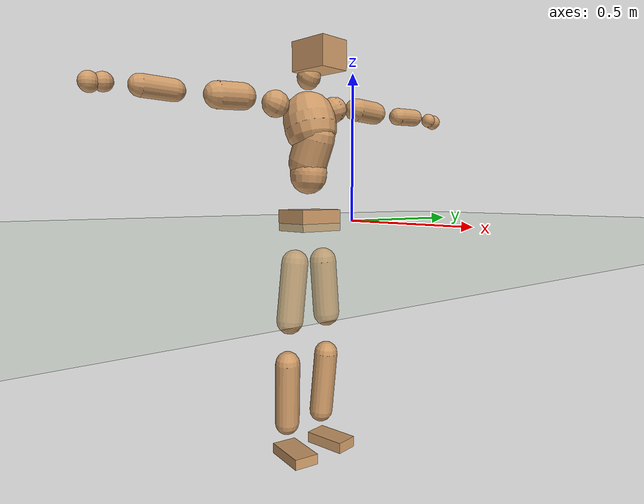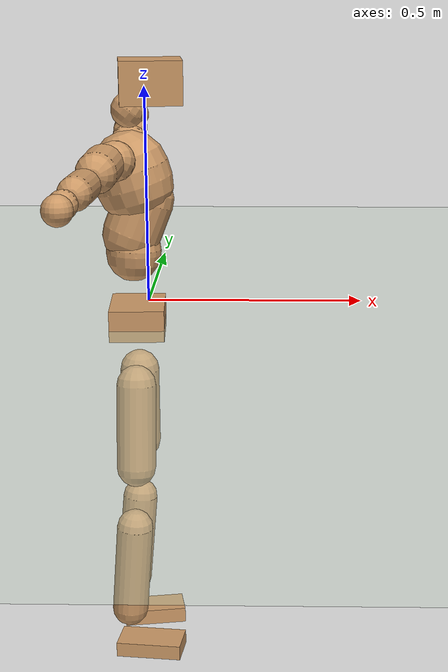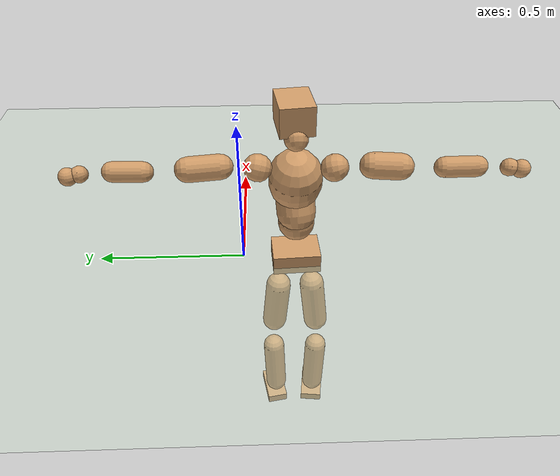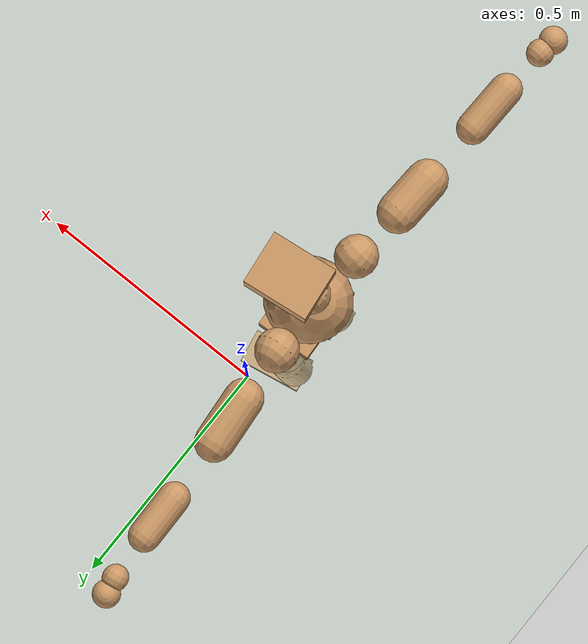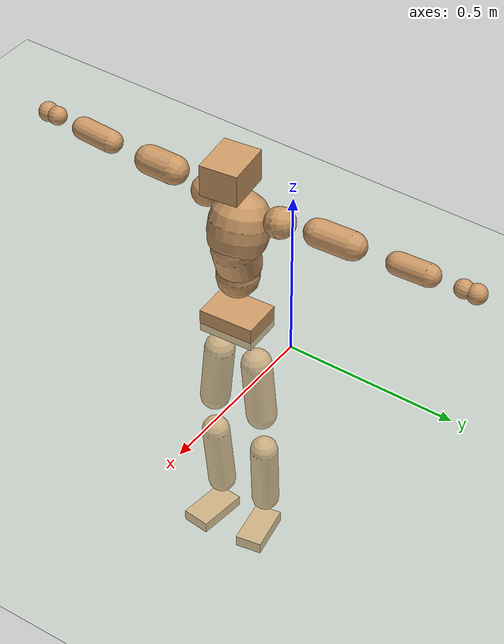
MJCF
<mujoco model="humanoid">
  <compiler coordinate="local" angle="radian"/>
  <default>
    <joint damping="0.0" armature="0.01" stiffness="0.0" limited="true"/>
    <geom conaffinity="1" condim="3" contype="7" margin="0.001" rgba="0.8 0.6 .4 1"/>
  </default>
  <asset>
    <texture type="skybox" builtin="gradient" rgb1=".4 .5 .6" rgb2="0 0 0" width="100" height="100"/>
    <texture builtin="flat" height="1278" mark="cross" markrgb="1 1 1" name="texgeom" random="0.01" rgb1="0.8 0.6 0.4" rgb2="0.8 0.6 0.4" type="cube" width="127"/>
    <texture builtin="checker" height="100" name="texplane" rgb1="0 0 0" rgb2="0.8 0.8 0.8" type="2d" width="100"/>
    <material name="MatPlane" reflectance="0.5" shininess="1" specular="1" texrepeat="60 60" texture="texplane"/>
    <material name="geom" texture="texgeom" texuniform="true"/>
  </asset>
  <worldbody>
    <light cutoff="100" diffuse="1 1 1" dir="-0 0 -1.3" directional="true" exponent="1" pos="0 0 1.3" specular=".1 .1 .1"/>
    <geom conaffinity="1" condim="3" name="floor" pos="0 0 0" rgba="0.8 0.9 0.8 1" size="100 100 .2" type="plane" material="MatPlane"/>
    <body name="Pelvis" pos="-0.003 -0.1813 0.0187">
      <freejoint name="Pelvis"/>
      <geom type="box" contype="1" conaffinity="1" density="5359.375106" pos="-0.0045 -0.0002 -0.0109" size="0.0604 0.0816 0.0347" quat="0.9997 0.0000 0.0000 0.0260" name="Pelvis"/>
      <body name="L_Hip" pos="-0.009 0.054 -0.076">
        <joint name="L_Hip_x" type="hinge" pos="0 0 0" axis="1 0 0" stiffness="1600" damping="160" armature="0.02" range="-180.0000 180.0000"/>
        <joint name="L_Hip_y" type="hinge" pos="0 0 0" axis="0 1 0" stiffness="1600" damping="160" armature="0.02" range="-180.0000 180.0000"/>
        <joint name="L_Hip_z" type="hinge" pos="0 0 0" axis="0 0 1" stiffness="1600" damping="160" armature="0.02" range="-180.0000 180.0000"/>
        <geom type="capsule" contype="1" conaffinity="1" density="2040.816327" size="0.0442" fromto="-0.0006 0.0068 -0.0739 -0.0020 0.0235 -0.2555" name="L_Hip"/>
        <body name="L_Knee" pos="-0.0026 0.0302 -0.3294">
          <joint name="L_Knee_x" type="hinge" pos="0 0 0" axis="1 0 0" stiffness="1600" damping="160" armature="0.02" range="-180.0000 180.0000"/>
          <joint name="L_Knee_y" type="hinge" pos="0 0 0" axis="0 1 0" stiffness="1600" damping="160" armature="0.02" range="-180.0000 180.0000"/>
          <joint name="L_Knee_z" type="hinge" pos="0 0 0" axis="0 0 1" stiffness="1600" damping="160" armature="0.02" range="-180.0000 180.0000"/>
          <geom type="capsule" contype="1" conaffinity="1" density="1234.567901" size="0.0401" fromto="-0.0061 -0.0022 -0.0698 -0.0242 -0.0089 -0.2783" name="L_Knee"/>
          <body name="L_Ankle" pos="-0.0302 -0.0112 -0.3481">
            <joint name="L_Ankle_x" type="hinge" pos="0 0 0" axis="1 0 0" stiffness="1600" damping="160" armature="0.02" range="-180.0000 180.0000"/>
            <joint name="L_Ankle_y" type="hinge" pos="0 0 0" axis="0 1 0" stiffness="1600" damping="160" armature="0.02" range="-180.0000 180.0000"/>
            <joint name="L_Ankle_z" type="hinge" pos="0 0 0" axis="0 0 1" stiffness="1600" damping="160" armature="0.02" range="-180.0000 180.0000"/>
            <geom type="box" contype="1" conaffinity="1" density="999.999983" pos="0.0513 0.0091 -0.0250" size="0.0719 0.0389 0.0177" quat="0.9961 0.0000 0.0000 0.0879" name="L_Ankle"/>
            <body name="L_Toe" pos="0.1027 0.0183 -0.05">
              <joint name="L_Toe_x" type="hinge" pos="0 0 0" axis="1 0 0" stiffness="1000" damping="100" armature="0.02" range="-180.0000 180.0000"/>
              <joint name="L_Toe_y" type="hinge" pos="0 0 0" axis="0 1 0" stiffness="1000" damping="100" armature="0.02" range="-180.0000 180.0000"/>
              <joint name="L_Toe_z" type="hinge" pos="0 0 0" axis="0 0 1" stiffness="1000" damping="100" armature="0.02" range="-180.0000 180.0000"/>
              <geom type="box" contype="1" conaffinity="1" density="8182070.315287" pos="0.0000 0.0000 0.0260" size="0.0008 0.002 0.0009" quat="0.9954 0.0000 0.0000 0.0955" name="L_Toe"/>
            </body>
          </body>
        </body>
      </body>
      <body name="R_Hip" pos="-0.0051 -0.0533 -0.0759">
        <joint name="R_Hip_x" type="hinge" pos="0 0 0" axis="1 0 0" stiffness="1600" damping="160" armature="0.02" range="-180.0000 180.0000"/>
        <joint name="R_Hip_y" type="hinge" pos="0 0 0" axis="0 1 0" stiffness="1600" damping="160" armature="0.02" range="-180.0000 180.0000"/>
        <joint name="R_Hip_z" type="hinge" pos="0 0 0" axis="0 0 1" stiffness="1600" damping="160" armature="0.02" range="-180.0000 180.0000"/>
        <geom type="capsule" contype="1" conaffinity="1" density="2040.816327" size="0.0437" fromto="-0.0008 -0.0075 -0.0733 -0.0030 -0.0270 -0.2627" name="R_Hip"/>
        <body name="R_Knee" pos="-0.0038 -0.0346 -0.3361">
          <joint name="R_Knee_x" type="hinge" pos="0 0 0" axis="1 0 0" stiffness="1600" damping="160" armature="0.02" range="-180.0000 180.0000"/>
          <joint name="R_Knee_y" type="hinge" pos="0 0 0" axis="0 1 0" stiffness="1600" damping="160" armature="0.02" range="-180.0000 180.0000"/>
          <joint name="R_Knee_z" type="hinge" pos="0 0 0" axis="0 0 1" stiffness="1600" damping="160" armature="0.02" range="-180.0000 180.0000"/>
          <geom type="capsule" contype="1" conaffinity="1" density="1234.567901" size="0.0408" fromto="-0.0055 0.0029 -0.0705 -0.0217 0.0115 -0.2780" name="R_Knee"/>
          <body name="R_Ankle" pos="-0.0273 0.0144 -0.3485">
            <joint name="R_Ankle_x" type="hinge" pos="0 0 0" axis="1 0 0" stiffness="1600" damping="160" armature="0.02" range="-180.0000 180.0000"/>
            <joint name="R_Ankle_y" type="hinge" pos="0 0 0" axis="0 1 0" stiffness="1600" damping="160" armature="0.02" range="-180.0000 180.0000"/>
            <joint name="R_Ankle_z" type="hinge" pos="0 0 0" axis="0 0 1" stiffness="1600" damping="160" armature="0.02" range="-180.0000 180.0000"/>
            <geom type="box" contype="1" conaffinity="1" density="1000.000007" pos="0.0528 -0.0058 -0.0205" size="0.0741 0.0416 0.0168" quat="0.9985 0.0000 0.0000 -0.0544" name="R_Ankle"/>
            <body name="R_Toe" pos="0.1055 -0.0115 -0.0411">
              <joint name="R_Toe_x" type="hinge" pos="0 0 0" axis="1 0 0" stiffness="1000" damping="100" armature="0.02" range="-180.0000 180.0000"/>
              <joint name="R_Toe_y" type="hinge" pos="0 0 0" axis="0 1 0" stiffness="1000" damping="100" armature="0.02" range="-180.0000 180.0000"/>
              <joint name="R_Toe_z" type="hinge" pos="0 0 0" axis="0 0 1" stiffness="1000" damping="100" armature="0.02" range="-180.0000 180.0000"/>
              <geom type="box" contype="1" conaffinity="1" density="8220899.034732" pos="0.0000 0.0000 0.0228" size="0.0008 0.0021 0.001" quat="0.9990 0.0000 0.0000 -0.0442" name="R_Toe"/>
            </body>
          </body>
        </body>
      </body>
      <body name="Torso" pos="-0.0127 -0.0021 0.0863">
        <joint name="Torso_x" type="hinge" pos="0 0 0" axis="1 0 0" stiffness="2000" damping="200" armature="0.02" range="-180.0000 180.0000"/>
        <joint name="Torso_y" type="hinge" pos="0 0 0" axis="0 1 0" stiffness="2000" damping="200" armature="0.02" range="-180.0000 180.0000"/>
        <joint name="Torso_z" type="hinge" pos="0 0 0" axis="0 0 1" stiffness="2000" damping="200" armature="0.02" range="-180.0000 180.0000"/>
        <geom type="capsule" contype="1" conaffinity="1" density="2040.816327" size="0.0606" fromto="0.0029 0.0020 0.0605 0.0024 0.0016 0.0486" name="Torso"/>
        <body name="Spine" pos="0.0053 0.0035 0.109">
          <joint name="Spine_x" type="hinge" pos="0 0 0" axis="1 0 0" stiffness="2000" damping="200" armature="0.02" range="-180.0000 180.0000"/>
          <joint name="Spine_y" type="hinge" pos="0 0 0" axis="0 1 0" stiffness="2000" damping="200" armature="0.02" range="-180.0000 180.0000"/>
          <joint name="Spine_z" type="hinge" pos="0 0 0" axis="0 0 1" stiffness="2000" damping="200" armature="0.02" range="-180.0000 180.0000"/>
          <geom type="capsule" contype="1" conaffinity="1" density="2040.816327" size="0.0646" fromto="0.0234 0.0049 0.0600 -0.0065 -0.0014 -0.0166" name="Spine"/>
          <body name="Chest" pos="0.0169 0.0036 0.0434">
            <joint name="Chest_x" type="hinge" pos="0 0 0" axis="1 0 0" stiffness="2000" damping="200" armature="0.02" range="-180.0000 180.0000"/>
            <joint name="Chest_y" type="hinge" pos="0 0 0" axis="0 1 0" stiffness="2000" damping="200" armature="0.02" range="-180.0000 180.0000"/>
            <joint name="Chest_z" type="hinge" pos="0 0 0" axis="0 0 1" stiffness="2000" damping="200" armature="0.02" range="-180.0000 180.0000"/>
            <geom type="capsule" contype="1" conaffinity="1" density="2040.816327" size="0.0853" fromto="-0.0240 -0.0013 0.0819 -0.0144 -0.0008 0.0493" name="Chest"/>
            <body name="Neck" pos="-0.046 -0.0034 0.1832">
              <joint name="Neck_x" type="hinge" pos="0 0 0" axis="1 0 0" stiffness="1000" damping="100" armature="0.02" range="-180.0000 180.0000"/>
              <joint name="Neck_y" type="hinge" pos="0 0 0" axis="0 1 0" stiffness="1000" damping="100" armature="0.02" range="-180.0000 180.0000"/>
              <joint name="Neck_z" type="hinge" pos="0 0 0" axis="0 0 1" stiffness="1000" damping="100" armature="0.02" range="-180.0000 180.0000"/>
              <geom type="capsule" contype="1" conaffinity="1" density="1000" size="0.0383" fromto="0.0238 0.0020 0.0300 0.0217 0.0018 0.0274" name="Neck"/>
              <body name="Head" pos="0.0455 0.0038 0.0573">
                <joint name="Head_x" type="hinge" pos="0 0 0" axis="1 0 0" stiffness="1000" damping="100" armature="0.02" range="-180.0000 180.0000"/>
                <joint name="Head_y" type="hinge" pos="0 0 0" axis="0 1 0" stiffness="1000" damping="100" armature="0.02" range="-180.0000 180.0000"/>
                <joint name="Head_z" type="hinge" pos="0 0 0" axis="0 0 1" stiffness="1000" damping="100" armature="0.02" range="-180.0000 180.0000"/>
                <geom type="box" contype="1" conaffinity="1" density="2250.000055" pos="0.0237 0.0029 0.0297" size="0.0675 0.0544 0.0471" quat="0.9982 0.0000 0.0000 0.0603" name="Head"/>
              </body>
            </body>
            <body name="L_Thorax" pos="-0.0335 0.0738 0.1065">
              <joint name="L_Thorax_x" type="hinge" pos="0 0 0" axis="1 0 0" stiffness="1000" damping="100" armature="0.02" range="-180.0000 180.0000"/>
              <joint name="L_Thorax_y" type="hinge" pos="0 0 0" axis="0 1 0" stiffness="1000" damping="100" armature="0.02" range="-180.0000 180.0000"/>
              <joint name="L_Thorax_z" type="hinge" pos="0 0 0" axis="0 0 1" stiffness="1000" damping="100" armature="0.02" range="-180.0000 180.0000"/>
              <geom type="capsule" contype="1" conaffinity="1" density="1000" size="0.0436" fromto="-0.0032 0.0417 0.0135 -0.0033 0.0436 0.0141" name="L_Thorax"/>
              <body name="L_Shoulder" pos="-0.0065 0.0853 0.0276">
                <joint name="L_Shoulder_x" type="hinge" pos="0 0 0" axis="1 0 0" stiffness="1000" damping="100" armature="0.02" range="-720.0000 720.0000"/>
                <joint name="L_Shoulder_y" type="hinge" pos="0 0 0" axis="0 1 0" stiffness="1000" damping="100" armature="0.02" range="-720.0000 720.0000"/>
                <joint name="L_Shoulder_z" type="hinge" pos="0 0 0" axis="0 0 1" stiffness="1000" damping="100" armature="0.02" range="-720.0000 720.0000"/>
                <geom type="capsule" contype="1" conaffinity="1" density="1000" size="0.0392" fromto="-0.0058 0.0690 -0.0020 -0.0144 0.1694 -0.0049" name="L_Shoulder"/>
                <body name="L_Elbow" pos="-0.0202 0.2383 -0.0069">
                  <joint name="L_Elbow_x" type="hinge" pos="0 0 0" axis="1 0 0" stiffness="1000" damping="100" armature="0.02" range="-720.0000 720.0000"/>
                  <joint name="L_Elbow_y" type="hinge" pos="0 0 0" axis="0 1 0" stiffness="1000" damping="100" armature="0.02" range="-720.0000 720.0000"/>
                  <joint name="L_Elbow_z" type="hinge" pos="0 0 0" axis="0 0 1" stiffness="1000" damping="100" armature="0.02" range="-720.0000 720.0000"/>
                  <geom type="capsule" contype="1" conaffinity="1" density="1000" size="0.0316" fromto="-0.0011 0.0616 0.0020 -0.0028 0.1535 0.0049" name="L_Elbow"/>
                  <body name="L_Wrist" pos="-0.0039 0.2151 0.0069">
                    <joint name="L_Wrist_x" type="hinge" pos="0 0 0" axis="1 0 0" stiffness="600" damping="60" armature="0.02" range="-180.0000 180.0000"/>
                    <joint name="L_Wrist_y" type="hinge" pos="0 0 0" axis="0 1 0" stiffness="600" damping="60" armature="0.02" range="-180.0000 180.0000"/>
                    <joint name="L_Wrist_z" type="hinge" pos="0 0 0" axis="0 0 1" stiffness="600" damping="60" armature="0.02" range="-180.0000 180.0000"/>
                    <geom type="capsule" contype="1" conaffinity="1" density="1000" size="0.0258" fromto="-0.0056 0.0336 -0.0040 -0.0059 0.0355 -0.0043" name="L_Wrist"/>
                    <body name="L_Hand" pos="-0.0115 0.0691 -0.0083">
                      <joint name="L_Hand_x" type="hinge" pos="0 0 0" axis="1 0 0" stiffness="600" damping="60" armature="0.02" range="-180.0000 180.0000"/>
                      <joint name="L_Hand_y" type="hinge" pos="0 0 0" axis="0 1 0" stiffness="600" damping="60" armature="0.02" range="-180.0000 180.0000"/>
                      <joint name="L_Hand_z" type="hinge" pos="0 0 0" axis="0 0 1" stiffness="600" damping="60" armature="0.02" range="-180.0000 180.0000"/>
                      <geom type="sphere" contype="1" conaffinity="1" density="1000" size="0.0278" pos="0.0000 0.0000 0.0000" name="L_Hand"/>
                    </body>
                  </body>
                </body>
              </body>
            </body>
            <body name="R_Thorax" pos="-0.0357 -0.0765 0.1038">
              <joint name="R_Thorax_x" type="hinge" pos="0 0 0" axis="1 0 0" stiffness="1000" damping="100" armature="0.02" range="-180.0000 180.0000"/>
              <joint name="R_Thorax_y" type="hinge" pos="0 0 0" axis="0 1 0" stiffness="1000" damping="100" armature="0.02" range="-180.0000 180.0000"/>
              <joint name="R_Thorax_z" type="hinge" pos="0 0 0" axis="0 0 1" stiffness="1000" damping="100" armature="0.02" range="-180.0000 180.0000"/>
              <geom type="capsule" contype="1" conaffinity="1" density="1000" size="0.0429" fromto="-0.0061 -0.0426 0.0145 -0.0064 -0.0445 0.0151" name="R_Thorax"/>
              <body name="R_Shoulder" pos="-0.0125 -0.0871 0.0296">
                <joint name="R_Shoulder_x" type="hinge" pos="0 0 0" axis="1 0 0" stiffness="1000" damping="100" armature="0.02" range="-720.0000 720.0000"/>
                <joint name="R_Shoulder_y" type="hinge" pos="0 0 0" axis="0 1 0" stiffness="1000" damping="100" armature="0.02" range="-720.0000 720.0000"/>
                <joint name="R_Shoulder_z" type="hinge" pos="0 0 0" axis="0 0 1" stiffness="1000" damping="100" armature="0.02" range="-720.0000 720.0000"/>
                <geom type="capsule" contype="1" conaffinity="1" density="1000" size="0.0413" fromto="-0.0035 -0.0712 -0.0030 -0.0077 -0.1559 -0.0065" name="R_Shoulder"/>
                <body name="R_Elbow" pos="-0.0112 -0.2271 -0.0095">
                  <joint name="R_Elbow_x" type="hinge" pos="0 0 0" axis="1 0 0" stiffness="1000" damping="100" armature="0.02" range="-720.0000 720.0000"/>
                  <joint name="R_Elbow_y" type="hinge" pos="0 0 0" axis="0 1 0" stiffness="1000" damping="100" armature="0.02" range="-720.0000 720.0000"/>
                  <joint name="R_Elbow_z" type="hinge" pos="0 0 0" axis="0 0 1" stiffness="1000" damping="100" armature="0.02" range="-720.0000 720.0000"/>
                  <geom type="capsule" contype="1" conaffinity="1" density="1000" size="0.0322" fromto="-0.0021 -0.0621 0.0018 -0.0054 -0.1607 0.0048" name="R_Elbow"/>
                  <body name="R_Wrist" pos="-0.0075 -0.2229 0.0066">
                    <joint name="R_Wrist_x" type="hinge" pos="0 0 0" axis="1 0 0" stiffness="600" damping="60" armature="0.02" range="-180.0000 180.0000"/>
                    <joint name="R_Wrist_y" type="hinge" pos="0 0 0" axis="0 1 0" stiffness="600" damping="60" armature="0.02" range="-180.0000 180.0000"/>
                    <joint name="R_Wrist_z" type="hinge" pos="0 0 0" axis="0 0 1" stiffness="600" damping="60" armature="0.02" range="-180.0000 180.0000"/>
                    <geom type="capsule" contype="1" conaffinity="1" density="1000" size="0.0268" fromto="-0.0043 -0.0341 -0.0031 -0.0045 -0.0361 -0.0033" name="R_Wrist"/>
                    <body name="R_Hand" pos="-0.0088 -0.0703 -0.0064">
                      <joint name="R_Hand_x" type="hinge" pos="0 0 0" axis="1 0 0" stiffness="600" damping="60" armature="0.02" range="-180.0000 180.0000"/>
                      <joint name="R_Hand_y" type="hinge" pos="0 0 0" axis="0 1 0" stiffness="600" damping="60" armature="0.02" range="-180.0000 180.0000"/>
                      <joint name="R_Hand_z" type="hinge" pos="0 0 0" axis="0 0 1" stiffness="600" damping="60" armature="0.02" range="-180.0000 180.0000"/>
                      <geom type="sphere" contype="1" conaffinity="1" density="1000" size="0.0282" pos="0.0000 0.0000 0.0000" name="R_Hand"/>
                    </body>
                  </body>
                </body>
              </body>
            </body>
          </body>
        </body>
      </body>
    </body>
  </worldbody>
  <actuator>
    <motor name="L_Hip_x" joint="L_Hip_x" gear="500"/>
    <motor name="L_Hip_y" joint="L_Hip_y" gear="500"/>
    <motor name="L_Hip_z" joint="L_Hip_z" gear="500"/>
    <motor name="L_Knee_x" joint="L_Knee_x" gear="500"/>
    <motor name="L_Knee_y" joint="L_Knee_y" gear="500"/>
    <motor name="L_Knee_z" joint="L_Knee_z" gear="500"/>
    <motor name="L_Ankle_x" joint="L_Ankle_x" gear="500"/>
    <motor name="L_Ankle_y" joint="L_Ankle_y" gear="500"/>
    <motor name="L_Ankle_z" joint="L_Ankle_z" gear="500"/>
    <motor name="L_Toe_x" joint="L_Toe_x" gear="500"/>
    <motor name="L_Toe_y" joint="L_Toe_y" gear="500"/>
    <motor name="L_Toe_z" joint="L_Toe_z" gear="500"/>
    <motor name="R_Hip_x" joint="R_Hip_x" gear="500"/>
    <motor name="R_Hip_y" joint="R_Hip_y" gear="500"/>
    <motor name="R_Hip_z" joint="R_Hip_z" gear="500"/>
    <motor name="R_Knee_x" joint="R_Knee_x" gear="500"/>
    <motor name="R_Knee_y" joint="R_Knee_y" gear="500"/>
    <motor name="R_Knee_z" joint="R_Knee_z" gear="500"/>
    <motor name="R_Ankle_x" joint="R_Ankle_x" gear="500"/>
    <motor name="R_Ankle_y" joint="R_Ankle_y" gear="500"/>
    <motor name="R_Ankle_z" joint="R_Ankle_z" gear="500"/>
    <motor name="R_Toe_x" joint="R_Toe_x" gear="500"/>
    <motor name="R_Toe_y" joint="R_Toe_y" gear="500"/>
    <motor name="R_Toe_z" joint="R_Toe_z" gear="500"/>
    <motor name="Torso_x" joint="Torso_x" gear="500"/>
    <motor name="Torso_y" joint="Torso_y" gear="500"/>
    <motor name="Torso_z" joint="Torso_z" gear="500"/>
    <motor name="Spine_x" joint="Spine_x" gear="500"/>
    <motor name="Spine_y" joint="Spine_y" gear="500"/>
    <motor name="Spine_z" joint="Spine_z" gear="500"/>
    <motor name="Chest_x" joint="Chest_x" gear="500"/>
    <motor name="Chest_y" joint="Chest_y" gear="500"/>
    <motor name="Chest_z" joint="Chest_z" gear="500"/>
    <motor name="Neck_x" joint="Neck_x" gear="500"/>
    <motor name="Neck_y" joint="Neck_y" gear="500"/>
    <motor name="Neck_z" joint="Neck_z" gear="500"/>
    <motor name="Head_x" joint="Head_x" gear="500"/>
    <motor name="Head_y" joint="Head_y" gear="500"/>
    <motor name="Head_z" joint="Head_z" gear="500"/>
    <motor name="L_Thorax_x" joint="L_Thorax_x" gear="500"/>
    <motor name="L_Thorax_y" joint="L_Thorax_y" gear="500"/>
    <motor name="L_Thorax_z" joint="L_Thorax_z" gear="500"/>
    <motor name="L_Shoulder_x" joint="L_Shoulder_x" gear="500"/>
    <motor name="L_Shoulder_y" joint="L_Shoulder_y" gear="500"/>
    <motor name="L_Shoulder_z" joint="L_Shoulder_z" gear="500"/>
    <motor name="L_Elbow_x" joint="L_Elbow_x" gear="500"/>
    <motor name="L_Elbow_y" joint="L_Elbow_y" gear="500"/>
    <motor name="L_Elbow_z" joint="L_Elbow_z" gear="500"/>
    <motor name="L_Wrist_x" joint="L_Wrist_x" gear="500"/>
    <motor name="L_Wrist_y" joint="L_Wrist_y" gear="500"/>
    <motor name="L_Wrist_z" joint="L_Wrist_z" gear="500"/>
    <motor name="L_Hand_x" joint="L_Hand_x" gear="500"/>
    <motor name="L_Hand_y" joint="L_Hand_y" gear="500"/>
    <motor name="L_Hand_z" joint="L_Hand_z" gear="500"/>
    <motor name="R_Thorax_x" joint="R_Thorax_x" gear="500"/>
    <motor name="R_Thorax_y" joint="R_Thorax_y" gear="500"/>
    <motor name="R_Thorax_z" joint="R_Thorax_z" gear="500"/>
    <motor name="R_Shoulder_x" joint="R_Shoulder_x" gear="500"/>
    <motor name="R_Shoulder_y" joint="R_Shoulder_y" gear="500"/>
    <motor name="R_Shoulder_z" joint="R_Shoulder_z" gear="500"/>
    <motor name="R_Elbow_x" joint="R_Elbow_x" gear="500"/>
    <motor name="R_Elbow_y" joint="R_Elbow_y" gear="500"/>
    <motor name="R_Elbow_z" joint="R_Elbow_z" gear="500"/>
    <motor name="R_Wrist_x" joint="R_Wrist_x" gear="500"/>
    <motor name="R_Wrist_y" joint="R_Wrist_y" gear="500"/>
    <motor name="R_Wrist_z" joint="R_Wrist_z" gear="500"/>
    <motor name="R_Hand_x" joint="R_Hand_x" gear="500"/>
    <motor name="R_Hand_y" joint="R_Hand_y" gear="500"/>
    <motor name="R_Hand_z" joint="R_Hand_z" gear="500"/>
  </actuator>
  <contact>
    <exclude body1="Torso" body2="Chest"/>
    <exclude body1="Head" body2="Chest"/>
    <exclude body1="R_Knee" body2="R_Toe"/>
    <exclude body1="R_Knee" body2="L_Ankle"/>
    <exclude body1="R_Knee" body2="L_Toe"/>
    <exclude body1="L_Knee" body2="L_Toe"/>
    <exclude body1="L_Knee" body2="R_Ankle"/>
    <exclude body1="L_Knee" body2="R_Toe"/>
    <exclude body1="L_Shoulder" body2="Chest"/>
    <exclude body1="R_Shoulder" body2="Chest"/>
  </contact>
  <sensor/>
  <size njmax="700" nconmax="700"/>
</mujoco>
